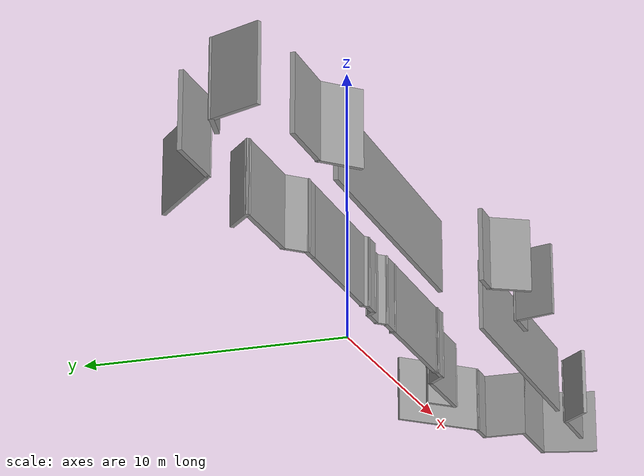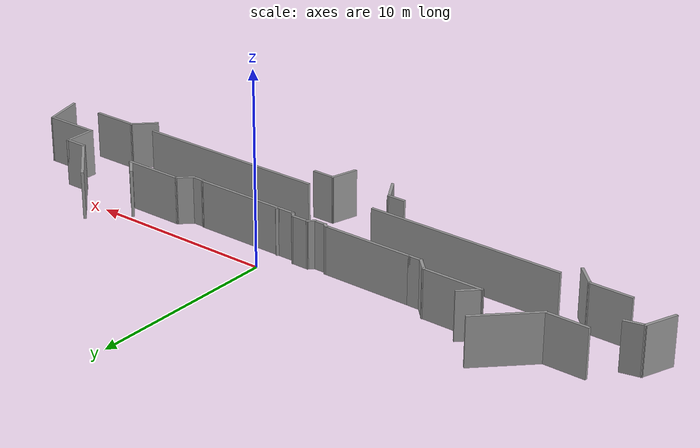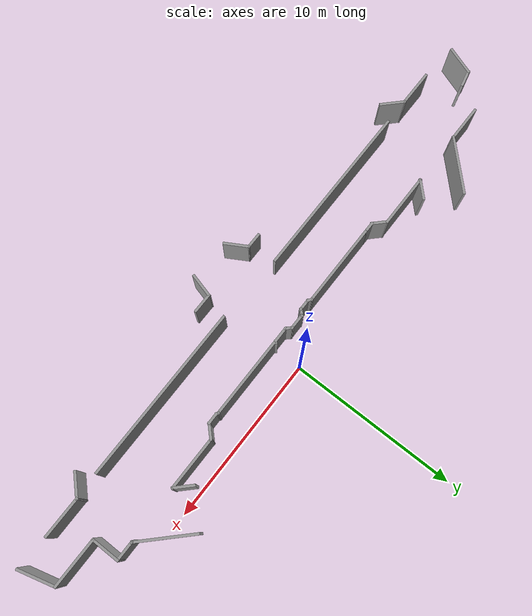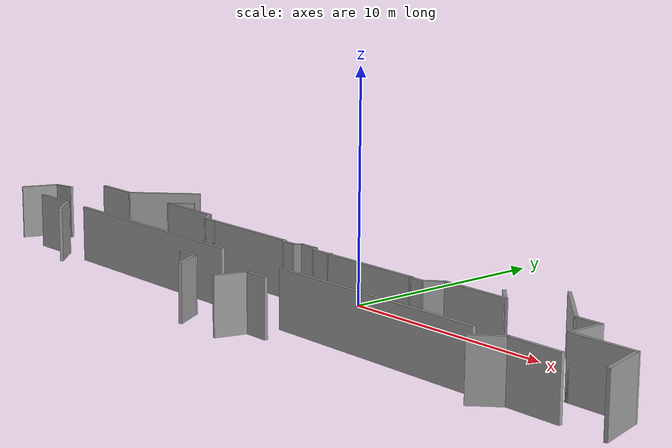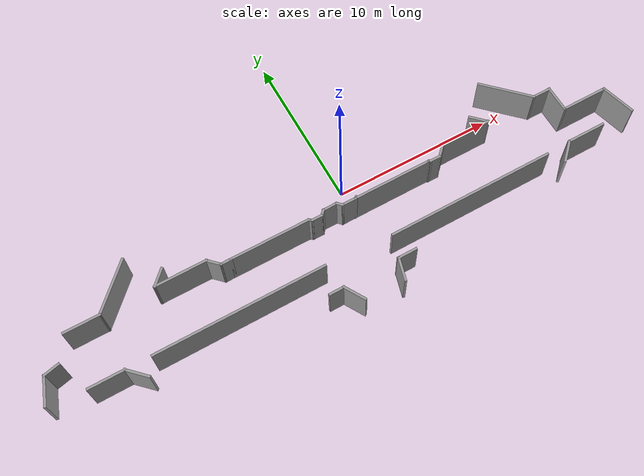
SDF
<?xml version='1.0'?>
<sdf version='1.6'>
  <model name='test-1'>
    <pose frame=''>-1.36361 -2.96237 0 0 -0 0</pose>
    <link name='Wall_14'>
      <collision name='Wall_14_Collision'>
        <geometry>
          <box>
            <size>1.8 0.15 2.5</size>
          </box>
        </geometry>
        <pose frame=''>0 0 1.25 0 -0 0</pose>
      </collision>
      <visual name='Wall_14_Visual'>
        <pose frame=''>0 0 1.25 0 -0 0</pose>
        <geometry>
          <box>
            <size>1.8 0.15 2.5</size>
          </box>
        </geometry>
        <material>
          <script>
            <uri>file://media/materials/scripts/gazebo.material</uri>
            <name>Gazebo/Grey</name>
          </script>
          <ambient>1 1 1 1</ambient>
        </material>
        <meta>
          <layer>0</layer>
        </meta>
      </visual>
      <pose frame=''>-18.1153 -0.45083 0 0 -0 1.2231</pose>
    </link>
    <link name='Wall_17'>
      <collision name='Wall_17_Collision'>
        <geometry>
          <box>
            <size>2.25 0.15 2.5</size>
          </box>
        </geometry>
        <pose frame=''>0 0 1.25 0 -0 0</pose>
      </collision>
      <visual name='Wall_17_Visual'>
        <pose frame=''>0 0 1.25 0 -0 0</pose>
        <geometry>
          <box>
            <size>2.25 0.15 2.5</size>
          </box>
        </geometry>
        <material>
          <script>
            <uri>file://media/materials/scripts/gazebo.material</uri>
            <name>Gazebo/Grey</name>
          </script>
          <ambient>1 1 1 1</ambient>
        </material>
        <meta>
          <layer>0</layer>
        </meta>
      </visual>
      <pose frame=''>-15.0323 1.98365 0 0 -0 0</pose>
    </link>
    <link name='Wall_20'>
      <collision name='Wall_20_Collision'>
        <geometry>
          <box>
            <size>3.5 0.15 2.5</size>
          </box>
        </geometry>
        <pose frame=''>0 0 1.25 0 -0 0</pose>
      </collision>
      <visual name='Wall_20_Visual'>
        <pose frame=''>0 0 1.25 0 -0 0</pose>
        <geometry>
          <box>
            <size>3.5 0.15 2.5</size>
          </box>
        </geometry>
        <material>
          <script>
            <uri>file://media/materials/scripts/gazebo.material</uri>
            <name>Gazebo/Grey</name>
          </script>
          <ambient>1 1 1 1</ambient>
        </material>
        <meta>
          <layer>0</layer>
        </meta>
      </visual>
      <pose frame=''>-12.7979 3.16805 0 0 -0 0.785398</pose>
    </link>
    <link name='Wall_24'>
      <collision name='Wall_24_Collision'>
        <geometry>
          <box>
            <size>1.25 0.15 2.5</size>
          </box>
        </geometry>
        <pose frame=''>0 0 1.25 0 -0 0</pose>
      </collision>
      <visual name='Wall_24_Visual'>
        <pose frame=''>0 0 1.25 0 -0 0</pose>
        <geometry>
          <box>
            <size>1.25 0.15 2.5</size>
          </box>
        </geometry>
        <material>
          <script>
            <uri>file://media/materials/scripts/gazebo.material</uri>
            <name>Gazebo/Grey</name>
          </script>
          <ambient>1 1 1 1</ambient>
        </material>
        <meta>
          <layer>0</layer>
        </meta>
      </visual>
      <pose frame=''>-10.3544 2.39886 0 0 -0 0.785398</pose>
    </link>
    <link name='Wall_28'>
      <collision name='Wall_28_Collision'>
        <geometry>
          <box>
            <size>3.25 0.15 2.5</size>
          </box>
        </geometry>
        <pose frame=''>0 0 1.25 0 -0 0</pose>
      </collision>
      <visual name='Wall_28_Visual'>
        <pose frame=''>0 0 1.25 0 -0 0</pose>
        <geometry>
          <box>
            <size>3.25 0.15 2.5</size>
          </box>
        </geometry>
        <material>
          <script>
            <uri>file://media/materials/scripts/gazebo.material</uri>
            <name>Gazebo/Grey</name>
          </script>
          <ambient>1 1 1 1</ambient>
        </material>
        <meta>
          <layer>0</layer>
        </meta>
      </visual>
      <pose frame=''>-9.19328 2.00995 0 0 -0 0</pose>
    </link>
    <link name='Wall_29'>
      <collision name='Wall_29_Collision'>
        <geometry>
          <box>
            <size>1 0.15 2.5</size>
          </box>
        </geometry>
        <pose frame=''>0 0 1.25 0 -0 0</pose>
      </collision>
      <visual name='Wall_29_Visual'>
        <pose frame=''>0 0 1.25 0 -0 0</pose>
        <geometry>
          <box>
            <size>1 0.15 2.5</size>
          </box>
        </geometry>
        <material>
          <script>
            <uri>file://media/materials/scripts/gazebo.material</uri>
            <name>Gazebo/Grey</name>
          </script>
          <ambient>1 1 1 1</ambient>
        </material>
        <meta>
          <layer>0</layer>
        </meta>
      </visual>
      <pose frame=''>-7.34276 1.70943 0 0 0 -0.785398</pose>
    </link>
    <link name='Wall_30'>
      <collision name='Wall_30_Collision'>
        <geometry>
          <box>
            <size>0.75 0.15 2.5</size>
          </box>
        </geometry>
        <pose frame=''>0 0 1.25 0 -0 0</pose>
      </collision>
      <visual name='Wall_30_Visual'>
        <pose frame=''>0 0 1.25 0 -0 0</pose>
        <geometry>
          <box>
            <size>0.75 0.15 2.5</size>
          </box>
        </geometry>
        <material>
          <script>
            <uri>file://media/materials/scripts/gazebo.material</uri>
            <name>Gazebo/Grey</name>
          </script>
          <ambient>1 1 1 1</ambient>
        </material>
        <meta>
          <layer>0</layer>
        </meta>
      </visual>
      <pose frame=''>-6.74224 1.40891 0 0 -0 0</pose>
    </link>
    <link name='Wall_31'>
      <collision name='Wall_31_Collision'>
        <geometry>
          <box>
            <size>5 0.15 2.5</size>
          </box>
        </geometry>
        <pose frame=''>0 0 1.25 0 -0 0</pose>
      </collision>
      <visual name='Wall_31_Visual'>
        <pose frame=''>0 0 1.25 0 -0 0</pose>
        <geometry>
          <box>
            <size>5 0.15 2.5</size>
          </box>
        </geometry>
        <material>
          <script>
            <uri>file://media/materials/scripts/gazebo.material</uri>
            <name>Gazebo/Grey</name>
          </script>
          <ambient>1 1 1 1</ambient>
        </material>
        <meta>
          <layer>0</layer>
        </meta>
      </visual>
      <pose frame=''>-4.01724 1.40891 0 0 -0 0</pose>
    </link>
    <link name='Wall_32'>
      <collision name='Wall_32_Collision'>
        <geometry>
          <box>
            <size>0.354797 0.15 2.5</size>
          </box>
        </geometry>
        <pose frame=''>0 0 1.25 0 -0 0</pose>
      </collision>
      <visual name='Wall_32_Visual'>
        <pose frame=''>0 0 1.25 0 -0 0</pose>
        <geometry>
          <box>
            <size>0.354797 0.15 2.5</size>
          </box>
        </geometry>
        <material>
          <script>
            <uri>file://media/materials/scripts/gazebo.material</uri>
            <name>Gazebo/Grey</name>
          </script>
          <ambient>1 1 1 1</ambient>
        </material>
        <meta>
          <layer>0</layer>
        </meta>
      </visual>
      <pose frame=''>-1.5106 1.3471 0 0 0 -0.647979</pose>
    </link>
    <link name='Wall_33'>
      <collision name='Wall_33_Collision'>
        <geometry>
          <box>
            <size>0.75 0.15 2.5</size>
          </box>
        </geometry>
        <pose frame=''>0 0 1.25 0 -0 0</pose>
      </collision>
      <visual name='Wall_33_Visual'>
        <pose frame=''>0 0 1.25 0 -0 0</pose>
        <geometry>
          <box>
            <size>0.75 0.15 2.5</size>
          </box>
        </geometry>
        <material>
          <script>
            <uri>file://media/materials/scripts/gazebo.material</uri>
            <name>Gazebo/Grey</name>
          </script>
          <ambient>1 1 1 1</ambient>
        </material>
        <meta>
          <layer>0</layer>
        </meta>
      </visual>
      <pose frame=''>-1.12895 1.2853 0 0 -0 0</pose>
    </link>
    <link name='Wall_35'>
      <collision name='Wall_35_Collision'>
        <geometry>
          <box>
            <size>0.5 0.15 2.5</size>
          </box>
        </geometry>
        <pose frame=''>0 0 1.25 0 -0 0</pose>
      </collision>
      <visual name='Wall_35_Visual'>
        <pose frame=''>0 0 1.25 0 -0 0</pose>
        <geometry>
          <box>
            <size>0.5 0.15 2.5</size>
          </box>
        </geometry>
        <material>
          <script>
            <uri>file://media/materials/scripts/gazebo.material</uri>
            <name>Gazebo/Grey</name>
          </script>
          <ambient>1 1 1 1</ambient>
        </material>
        <meta>
          <layer>0</layer>
        </meta>
      </visual>
      <pose frame=''>-0.705209 1.40904 0 0 -0 0.785398</pose>
    </link>
    <link name='Wall_36'>
      <collision name='Wall_36_Collision'>
        <geometry>
          <box>
            <size>1 0.15 2.5</size>
          </box>
        </geometry>
        <pose frame=''>0 0 1.25 0 -0 0</pose>
      </collision>
      <visual name='Wall_36_Visual'>
        <pose frame=''>0 0 1.25 0 -0 0</pose>
        <geometry>
          <box>
            <size>1 0.15 2.5</size>
          </box>
        </geometry>
        <material>
          <script>
            <uri>file://media/materials/scripts/gazebo.material</uri>
            <name>Gazebo/Grey</name>
          </script>
          <ambient>1 1 1 1</ambient>
        </material>
        <meta>
          <layer>0</layer>
        </meta>
      </visual>
      <pose frame=''>-0.156465 1.53278 0 0 -0 0</pose>
    </link>
    <link name='Wall_37'>
      <collision name='Wall_37_Collision'>
        <geometry>
          <box>
            <size>0.5 0.15 2.5</size>
          </box>
        </geometry>
        <pose frame=''>0 0 1.25 0 -0 0</pose>
      </collision>
      <visual name='Wall_37_Visual'>
        <pose frame=''>0 0 1.25 0 -0 0</pose>
        <geometry>
          <box>
            <size>0.5 0.15 2.5</size>
          </box>
        </geometry>
        <material>
          <script>
            <uri>file://media/materials/scripts/gazebo.material</uri>
            <name>Gazebo/Grey</name>
          </script>
          <ambient>1 1 1 1</ambient>
        </material>
        <meta>
          <layer>0</layer>
        </meta>
      </visual>
      <pose frame=''>0.392278 1.40904 0 0 0 -0.785398</pose>
    </link>
    <link name='Wall_39'>
      <collision name='Wall_39_Collision'>
        <geometry>
          <box>
            <size>1 0.15 2.5</size>
          </box>
        </geometry>
        <pose frame=''>0 0 1.25 0 -0 0</pose>
      </collision>
      <visual name='Wall_39_Visual'>
        <pose frame=''>0 0 1.25 0 -0 0</pose>
        <geometry>
          <box>
            <size>1 0.15 2.5</size>
          </box>
        </geometry>
        <material>
          <script>
            <uri>file://media/materials/scripts/gazebo.material</uri>
            <name>Gazebo/Grey</name>
          </script>
          <ambient>1 1 1 1</ambient>
        </material>
        <meta>
          <layer>0</layer>
        </meta>
      </visual>
      <pose frame=''>0.941022 1.2853 0 0 -0 0</pose>
    </link>
    <link name='Wall_40'>
      <collision name='Wall_40_Collision'>
        <geometry>
          <box>
            <size>0.25 0.15 2.5</size>
          </box>
        </geometry>
        <pose frame=''>0 0 1.25 0 -0 0</pose>
      </collision>
      <visual name='Wall_40_Visual'>
        <pose frame=''>0 0 1.25 0 -0 0</pose>
        <geometry>
          <box>
            <size>0.25 0.15 2.5</size>
          </box>
        </geometry>
        <material>
          <script>
            <uri>file://media/materials/scripts/gazebo.material</uri>
            <name>Gazebo/Grey</name>
          </script>
          <ambient>1 1 1 1</ambient>
        </material>
        <meta>
          <layer>0</layer>
        </meta>
      </visual>
      <pose frame=''>1.40138 1.32065 0 0 -0 0.785398</pose>
    </link>
    <link name='Wall_42'>
      <collision name='Wall_42_Collision'>
        <geometry>
          <box>
            <size>5 0.15 2.5</size>
          </box>
        </geometry>
        <pose frame=''>0 0 1.25 0 -0 0</pose>
      </collision>
      <visual name='Wall_42_Visual'>
        <pose frame=''>0 0 1.25 0 -0 0</pose>
        <geometry>
          <box>
            <size>5 0.15 2.5</size>
          </box>
        </geometry>
        <material>
          <script>
            <uri>file://media/materials/scripts/gazebo.material</uri>
            <name>Gazebo/Grey</name>
          </script>
          <ambient>1 1 1 1</ambient>
        </material>
        <meta>
          <layer>0</layer>
        </meta>
      </visual>
      <pose frame=''>3.79102 1.2853 0 0 -0 0</pose>
    </link>
    <link name='Wall_43'>
      <collision name='Wall_43_Collision'>
        <geometry>
          <box>
            <size>0.25 0.15 2.5</size>
          </box>
        </geometry>
        <pose frame=''>0 0 1.25 0 -0 0</pose>
      </collision>
      <visual name='Wall_43_Visual'>
        <pose frame=''>0 0 1.25 0 -0 0</pose>
        <geometry>
          <box>
            <size>0.25 0.15 2.5</size>
          </box>
        </geometry>
        <material>
          <script>
            <uri>file://media/materials/scripts/gazebo.material</uri>
            <name>Gazebo/Grey</name>
          </script>
          <ambient>1 1 1 1</ambient>
        </material>
        <meta>
          <layer>0</layer>
        </meta>
      </visual>
      <pose frame=''>6.25932 1.2603 0 0 0 -0.523599</pose>
    </link>
    <link name='Wall_44'>
      <collision name='Wall_44_Collision'>
        <geometry>
          <box>
            <size>0.75 0.15 2.5</size>
          </box>
        </geometry>
        <pose frame=''>0 0 1.25 0 -0 0</pose>
      </collision>
      <visual name='Wall_44_Visual'>
        <pose frame=''>0 0 1.25 0 -0 0</pose>
        <geometry>
          <box>
            <size>0.75 0.15 2.5</size>
          </box>
        </geometry>
        <material>
          <script>
            <uri>file://media/materials/scripts/gazebo.material</uri>
            <name>Gazebo/Grey</name>
          </script>
          <ambient>1 1 1 1</ambient>
        </material>
        <meta>
          <layer>0</layer>
        </meta>
      </visual>
      <pose frame=''>6.60262 1.2353 0 0 -0 0</pose>
    </link>
    <link name='Wall_45'>
      <collision name='Wall_45_Collision'>
        <geometry>
          <box>
            <size>1 0.15 2.5</size>
          </box>
        </geometry>
        <pose frame=''>0 0 1.25 0 -0 0</pose>
      </collision>
      <visual name='Wall_45_Visual'>
        <pose frame=''>0 0 1.25 0 -0 0</pose>
        <geometry>
          <box>
            <size>1 0.15 2.5</size>
          </box>
        </geometry>
        <material>
          <script>
            <uri>file://media/materials/scripts/gazebo.material</uri>
            <name>Gazebo/Grey</name>
          </script>
          <ambient>1 1 1 1</ambient>
        </material>
        <meta>
          <layer>0</layer>
        </meta>
      </visual>
      <pose frame=''>7.20315 1.53582 0 0 -0 0.785398</pose>
    </link>
    <link name='Wall_46'>
      <collision name='Wall_46_Collision'>
        <geometry>
          <box>
            <size>3.25 0.15 2.5</size>
          </box>
        </geometry>
        <pose frame=''>0 0 1.25 0 -0 0</pose>
      </collision>
      <visual name='Wall_46_Visual'>
        <pose frame=''>0 0 1.25 0 -0 0</pose>
        <geometry>
          <box>
            <size>3.25 0.15 2.5</size>
          </box>
        </geometry>
        <material>
          <script>
            <uri>file://media/materials/scripts/gazebo.material</uri>
            <name>Gazebo/Grey</name>
          </script>
          <ambient>1 1 1 1</ambient>
        </material>
        <meta>
          <layer>0</layer>
        </meta>
      </visual>
      <pose frame=''>9.05367 1.83634 0 0 -0 0</pose>
    </link>
    <link name='Wall_47'>
      <collision name='Wall_47_Collision'>
        <geometry>
          <box>
            <size>1.25 0.15 2.5</size>
          </box>
        </geometry>
        <pose frame=''>0 0 1.25 0 -0 0</pose>
      </collision>
      <visual name='Wall_47_Visual'>
        <pose frame=''>0 0 1.25 0 -0 0</pose>
        <geometry>
          <box>
            <size>1.25 0.15 2.5</size>
          </box>
        </geometry>
        <material>
          <script>
            <uri>file://media/materials/scripts/gazebo.material</uri>
            <name>Gazebo/Grey</name>
          </script>
          <ambient>1 1 1 1</ambient>
        </material>
        <meta>
          <layer>0</layer>
        </meta>
      </visual>
      <pose frame=''>10.2148 2.22525 0 0 -0 2.35619</pose>
    </link>
    <link name='Wall_49'>
      <collision name='Wall_49_Collision'>
        <geometry>
          <box>
            <size>3.5 0.15 2.5</size>
          </box>
        </geometry>
        <pose frame=''>0 0 1.25 0 -0 0</pose>
      </collision>
      <visual name='Wall_49_Visual'>
        <pose frame=''>0 0 1.25 0 -0 0</pose>
        <geometry>
          <box>
            <size>3.5 0.15 2.5</size>
          </box>
        </geometry>
        <material>
          <script>
            <uri>file://media/materials/scripts/gazebo.material</uri>
            <name>Gazebo/Grey</name>
          </script>
          <ambient>1 1 1 1</ambient>
        </material>
        <meta>
          <layer>0</layer>
        </meta>
      </visual>
      <pose frame=''>12.7227 3.10318 0 0 0 -0.785398</pose>
    </link>
    <link name='Wall_50'>
      <collision name='Wall_50_Collision'>
        <geometry>
          <box>
            <size>1.25 0.15 2.5</size>
          </box>
        </geometry>
        <pose frame=''>0 0 1.25 0 -0 0</pose>
      </collision>
      <visual name='Wall_50_Visual'>
        <pose frame=''>0 0 1.25 0 -0 0</pose>
        <geometry>
          <box>
            <size>1.25 0.15 2.5</size>
          </box>
        </geometry>
        <material>
          <script>
            <uri>file://media/materials/scripts/gazebo.material</uri>
            <name>Gazebo/Grey</name>
          </script>
          <ambient>1 1 1 1</ambient>
        </material>
        <meta>
          <layer>0</layer>
        </meta>
      </visual>
      <pose frame=''>14.4571 1.91878 0 0 -0 0</pose>
    </link>
    <link name='Wall_52'>
      <collision name='Wall_52_Collision'>
        <geometry>
          <box>
            <size>1.75 0.15 2.5</size>
          </box>
        </geometry>
        <pose frame=''>0 0 1.25 0 -0 0</pose>
      </collision>
      <visual name='Wall_52_Visual'>
        <pose frame=''>0 0 1.25 0 -0 0</pose>
        <geometry>
          <box>
            <size>1.75 0.15 2.5</size>
          </box>
        </geometry>
        <material>
          <script>
            <uri>file://media/materials/scripts/gazebo.material</uri>
            <name>Gazebo/Grey</name>
          </script>
          <ambient>1 1 1 1</ambient>
        </material>
        <meta>
          <layer>0</layer>
        </meta>
      </visual>
      <pose frame=''>15.0071 1.11878 0 0 0 -1.5708</pose>
    </link>
    <link name='Wall_53'>
      <collision name='Wall_53_Collision'>
        <geometry>
          <box>
            <size>3 0.15 2.5</size>
          </box>
        </geometry>
        <pose frame=''>0 0 1.25 0 -0 0</pose>
      </collision>
      <visual name='Wall_53_Visual'>
        <pose frame=''>0 0 1.25 0 -0 0</pose>
        <geometry>
          <box>
            <size>3 0.15 2.5</size>
          </box>
        </geometry>
        <material>
          <script>
            <uri>file://media/materials/scripts/gazebo.material</uri>
            <name>Gazebo/Grey</name>
          </script>
          <ambient>1 1 1 1</ambient>
        </material>
        <meta>
          <layer>0</layer>
        </meta>
      </visual>
      <pose frame=''>16.4321 0.318781 0 0 -0 0</pose>
    </link>
    <link name='Wall_54'>
      <collision name='Wall_54_Collision'>
        <geometry>
          <box>
            <size>2.25 0.15 2.5</size>
          </box>
        </geometry>
        <pose frame=''>0 0 1.25 0 -0 0</pose>
      </collision>
      <visual name='Wall_54_Visual'>
        <pose frame=''>0 0 1.25 0 -0 0</pose>
        <geometry>
          <box>
            <size>2.25 0.15 2.5</size>
          </box>
        </geometry>
        <material>
          <script>
            <uri>file://media/materials/scripts/gazebo.material</uri>
            <name>Gazebo/Grey</name>
          </script>
          <ambient>1 1 1 1</ambient>
        </material>
        <meta>
          <layer>0</layer>
        </meta>
      </visual>
      <pose frame=''>18.1288 -0.695441 0 0 0 -1.309</pose>
    </link>
    <link name='Wall_57'>
      <collision name='Wall_57_Collision'>
        <geometry>
          <box>
            <size>2.5 0.15 2.5</size>
          </box>
        </geometry>
        <pose frame=''>0 0 1.25 0 -0 0</pose>
      </collision>
      <visual name='Wall_57_Visual'>
        <pose frame=''>0 0 1.25 0 -0 0</pose>
        <geometry>
          <box>
            <size>2.5 0.15 2.5</size>
          </box>
        </geometry>
        <material>
          <script>
            <uri>file://media/materials/scripts/gazebo.material</uri>
            <name>Gazebo/Grey</name>
          </script>
          <ambient>1 1 1 1</ambient>
        </material>
        <meta>
          <layer>0</layer>
        </meta>
      </visual>
      <pose frame=''>15.1639 -1.63721 0 0 -0 3.14159</pose>
    </link>
    <link name='Wall_58'>
      <collision name='Wall_58_Collision'>
        <geometry>
          <box>
            <size>1.5 0.15 2.5</size>
          </box>
        </geometry>
        <pose frame=''>0 0 1.25 0 -0 0</pose>
      </collision>
      <visual name='Wall_58_Visual'>
        <pose frame=''>0 0 1.25 0 -0 0</pose>
        <geometry>
          <box>
            <size>1.5 0.15 2.5</size>
          </box>
        </geometry>
        <material>
          <script>
            <uri>file://media/materials/scripts/gazebo.material</uri>
            <name>Gazebo/Grey</name>
          </script>
          <ambient>1 1 1 1</ambient>
        </material>
        <meta>
          <layer>0</layer>
        </meta>
      </visual>
      <pose frame=''>13.5116 -2.11451 0 0 0 -2.35619</pose>
    </link>
    <link name='Wall_62'>
      <collision name='Wall_62_Collision'>
        <geometry>
          <box>
            <size>10.5 0.15 2.5</size>
          </box>
        </geometry>
        <pose frame=''>0 0 1.25 0 -0 0</pose>
      </collision>
      <visual name='Wall_62_Visual'>
        <pose frame=''>0 0 1.25 0 -0 0</pose>
        <geometry>
          <box>
            <size>10.5 0.15 2.5</size>
          </box>
        </geometry>
        <material>
          <script>
            <uri>file://media/materials/scripts/gazebo.material</uri>
            <name>Gazebo/Grey</name>
          </script>
          <ambient>1 1 1 1</ambient>
        </material>
        <meta>
          <layer>0</layer>
        </meta>
      </visual>
      <pose frame=''>7.21988 -1.69796 0 0 -0 3.14159</pose>
    </link>
    <link name='Wall_64'>
      <collision name='Wall_64_Collision'>
        <geometry>
          <box>
            <size>1.25 0.15 2.5</size>
          </box>
        </geometry>
        <pose frame=''>0 0 1.25 0 -0 0</pose>
      </collision>
      <visual name='Wall_64_Visual'>
        <pose frame=''>0 0 1.25 0 -0 0</pose>
        <geometry>
          <box>
            <size>1.25 0.15 2.5</size>
          </box>
        </geometry>
        <material>
          <script>
            <uri>file://media/materials/scripts/gazebo.material</uri>
            <name>Gazebo/Grey</name>
          </script>
          <ambient>1 1 1 1</ambient>
        </material>
        <meta>
          <layer>0</layer>
        </meta>
      </visual>
      <pose frame=''>2.15316 -3.06266 0 0 -0 3.14159</pose>
    </link>
    <link name='Wall_65'>
      <collision name='Wall_65_Collision'>
        <geometry>
          <box>
            <size>1.5 0.15 2.5</size>
          </box>
        </geometry>
        <pose frame=''>0 0 1.25 0 -0 0</pose>
      </collision>
      <visual name='Wall_65_Visual'>
        <pose frame=''>0 0 1.25 0 -0 0</pose>
        <geometry>
          <box>
            <size>1.5 0.15 2.5</size>
          </box>
        </geometry>
        <material>
          <script>
            <uri>file://media/materials/scripts/gazebo.material</uri>
            <name>Gazebo/Grey</name>
          </script>
          <ambient>1 1 1 1</ambient>
        </material>
        <meta>
          <layer>0</layer>
        </meta>
      </visual>
      <pose frame=''>1.42846 -3.71467 0 0 0 -1.8326</pose>
    </link>
    <link name='Wall_67'>
      <collision name='Wall_67_Collision'>
        <geometry>
          <box>
            <size>1.5 0.15 2.5</size>
          </box>
        </geometry>
        <pose frame=''>0 0 1.25 0 -0 0</pose>
      </collision>
      <visual name='Wall_67_Visual'>
        <pose frame=''>0 0 1.25 0 -0 0</pose>
        <geometry>
          <box>
            <size>1.5 0.15 2.5</size>
          </box>
        </geometry>
        <material>
          <script>
            <uri>file://media/materials/scripts/gazebo.material</uri>
            <name>Gazebo/Grey</name>
          </script>
          <ambient>1 1 1 1</ambient>
        </material>
        <meta>
          <layer>0</layer>
        </meta>
      </visual>
      <pose frame=''>-1.52028 -3.65776 0 0 -0 2.0944</pose>
    </link>
    <link name='Wall_68'>
      <collision name='Wall_68_Collision'>
        <geometry>
          <box>
            <size>1 0.15 2.5</size>
          </box>
        </geometry>
        <pose frame=''>0 0 1.25 0 -0 0</pose>
      </collision>
      <visual name='Wall_68_Visual'>
        <pose frame=''>0 0 1.25 0 -0 0</pose>
        <geometry>
          <box>
            <size>1 0.15 2.5</size>
          </box>
        </geometry>
        <material>
          <script>
            <uri>file://media/materials/scripts/gazebo.material</uri>
            <name>Gazebo/Grey</name>
          </script>
          <ambient>1 1 1 1</ambient>
        </material>
        <meta>
          <layer>0</layer>
        </meta>
      </visual>
      <pose frame=''>-2.28278 -3.07319 0 0 -0 3.14159</pose>
    </link>
    <link name='Wall_73'>
      <collision name='Wall_73_Collision'>
        <geometry>
          <box>
            <size>10.5 0.15 2.5</size>
          </box>
        </geometry>
        <pose frame=''>0 0 1.25 0 -0 0</pose>
      </collision>
      <visual name='Wall_73_Visual'>
        <pose frame=''>0 0 1.25 0 -0 0</pose>
        <geometry>
          <box>
            <size>10.5 0.15 2.5</size>
          </box>
        </geometry>
        <material>
          <script>
            <uri>file://media/materials/scripts/gazebo.material</uri>
            <name>Gazebo/Grey</name>
          </script>
          <ambient>1 1 1 1</ambient>
        </material>
        <meta>
          <layer>0</layer>
        </meta>
      </visual>
      <pose frame=''>-7.30614 -1.46665 0 0 -0 3.14159</pose>
    </link>
    <link name='Wall_75'>
      <collision name='Wall_75_Collision'>
        <geometry>
          <box>
            <size>1.5 0.15 2.5</size>
          </box>
        </geometry>
        <pose frame=''>0 0 1.25 0 -0 0</pose>
      </collision>
      <visual name='Wall_75_Visual'>
        <pose frame=''>0 0 1.25 0 -0 0</pose>
        <geometry>
          <box>
            <size>1.5 0.15 2.5</size>
          </box>
        </geometry>
        <material>
          <script>
            <uri>file://media/materials/scripts/gazebo.material</uri>
            <name>Gazebo/Grey</name>
          </script>
          <ambient>1 1 1 1</ambient>
        </material>
        <meta>
          <layer>0</layer>
        </meta>
      </visual>
      <pose frame=''>-13.5723 -1.93771 0 0 -0 2.35619</pose>
    </link>
    <link name='Wall_76'>
      <collision name='Wall_76_Collision'>
        <geometry>
          <box>
            <size>2.25 0.15 2.5</size>
          </box>
        </geometry>
        <pose frame=''>0 0 1.25 0 -0 0</pose>
      </collision>
      <visual name='Wall_76_Visual'>
        <pose frame=''>0 0 1.25 0 -0 0</pose>
        <geometry>
          <box>
            <size>2.25 0.15 2.5</size>
          </box>
        </geometry>
        <material>
          <script>
            <uri>file://media/materials/scripts/gazebo.material</uri>
            <name>Gazebo/Grey</name>
          </script>
          <ambient>1 1 1 1</ambient>
        </material>
        <meta>
          <layer>0</layer>
        </meta>
      </visual>
      <pose frame=''>-15.0996 -1.46041 0 0 -0 3.14159</pose>
    </link>
    <link name='Wall_8'>
      <collision name='Wall_8_Collision'>
        <geometry>
          <box>
            <size>1.07052 0.15 2.5</size>
          </box>
        </geometry>
        <pose frame=''>0 0 1.25 0 -0 0</pose>
      </collision>
      <visual name='Wall_8_Visual'>
        <pose frame=''>0 0 1.25 0 -0 0</pose>
        <geometry>
          <box>
            <size>1.07052 0.15 2.5</size>
          </box>
        </geometry>
        <material>
          <script>
            <uri>file://media/materials/scripts/gazebo.material</uri>
            <name>Gazebo/Grey</name>
          </script>
          <ambient>1 1 1 1</ambient>
        </material>
        <meta>
          <layer>0</layer>
        </meta>
      </visual>
      <pose frame=''>-17.3853 0.420912 0 0 -0 0.22308</pose>
    </link>
    <static>1</static>
  </model>
</sdf>
